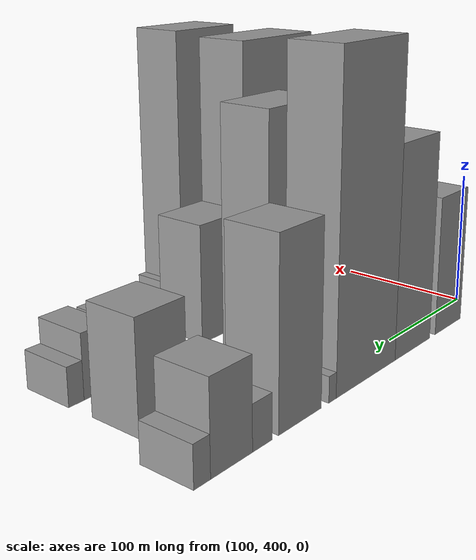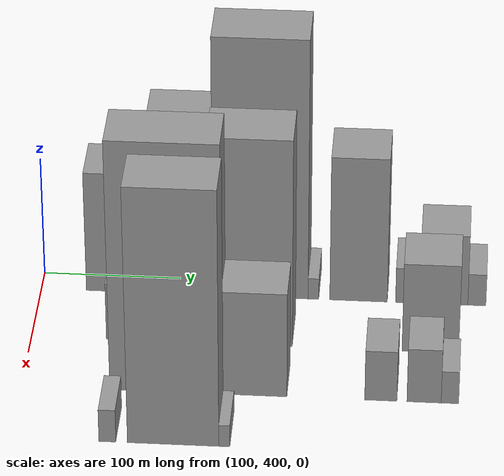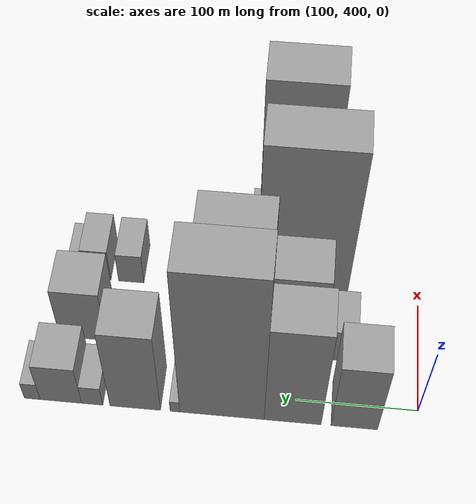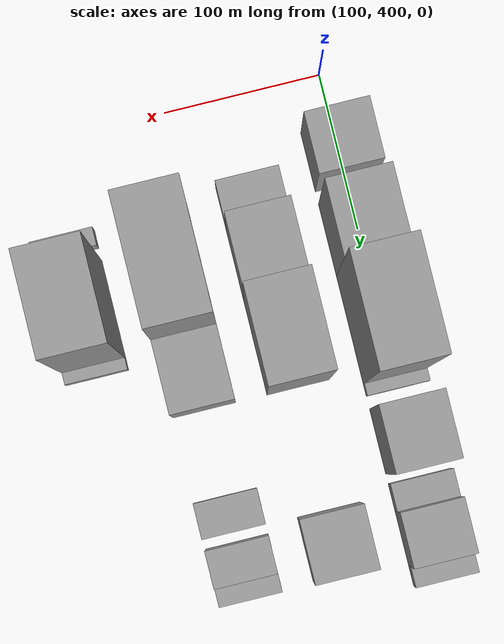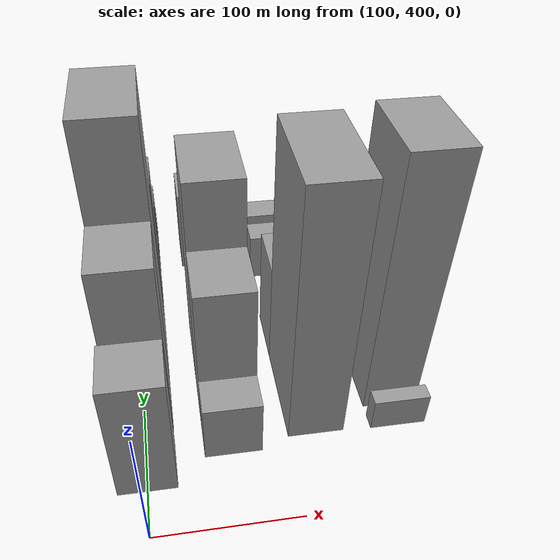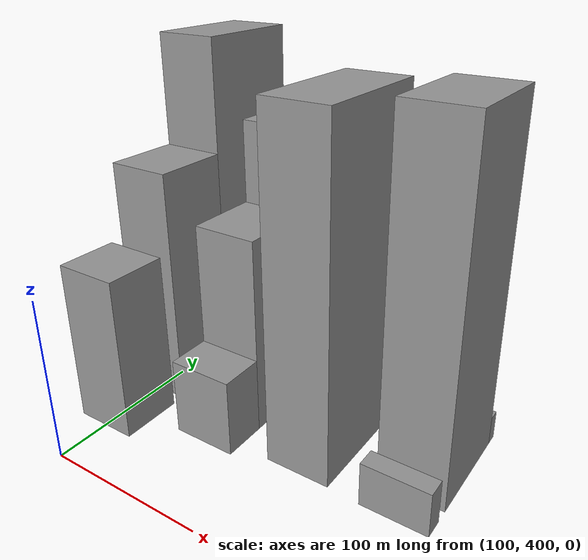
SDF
<sdf version="1.6">
 <world name="default">
  <model name="building_37">
   <static>1</static>
   <pose>100.0000 451.7910 0 0.000000 0.000000 0.000000</pose>
   <link name="link">
    <pose>0 0 51.00 0 0 0</pose>
    <collision name="collision"><geometry><box><size>40.0000 37.9322 102.0000</size></box></geometry></collision>
    <visual name="visual">
     <cast_shadows>0</cast_shadows>
     <geometry><box><size>40.0000 37.9322 102.0000</size></box></geometry>
     <material>
      <script>
       <uri>model://grey_wall/materials/scripts</uri>
       <uri>model://grey_wall/materials/textures</uri>
       <name>vrc/grey_wall</name>
      </script>
     </material>
    </visual>
   </link>
  </model>
  <model name="building_38">
   <static>1</static>
   <pose>100.0000 502.1103 0 0.000000 0.000000 0.000000</pose>
   <link name="link">
    <pose>0 0 75.00 0 0 0</pose>
    <collision name="collision"><geometry><box><size>40.0000 46.7064 150.0000</size></box></geometry></collision>
    <visual name="visual">
     <cast_shadows>0</cast_shadows>
     <geometry><box><size>40.0000 46.7064 150.0000</size></box></geometry>
     <material>
      <script>
       <uri>model://grey_wall/materials/scripts</uri>
       <uri>model://grey_wall/materials/textures</uri>
       <name>vrc/grey_wall</name>
      </script>
     </material>
    </visual>
   </link>
  </model>
  <model name="building_39">
   <static>1</static>
   <pose>100.0000 560.2259 0 0.000000 0.000000 0.000000</pose>
   <link name="link">
    <pose>0 0 109.50 0 0 0</pose>
    <collision name="collision"><geometry><box><size>40.0000 69.5249 219.0000</size></box></geometry></collision>
    <visual name="visual">
     <cast_shadows>0</cast_shadows>
     <geometry><box><size>40.0000 69.5249 219.0000</size></box></geometry>
     <material>
      <script>
       <uri>model://grey_wall/materials/scripts</uri>
       <uri>model://grey_wall/materials/textures</uri>
       <name>vrc/grey_wall</name>
      </script>
     </material>
    </visual>
   </link>
  </model>
  <model name="building_40">
   <static>1</static>
   <pose>100.0000 598.9183 0 0.000000 0.000000 0.000000</pose>
   <link name="link">
    <pose>0 0 9.00 0 0 0</pose>
    <collision name="collision"><geometry><box><size>40.0000 7.8598 18.0000</size></box></geometry></collision>
    <visual name="visual">
     <cast_shadows>0</cast_shadows>
     <geometry><box><size>40.0000 7.8598 18.0000</size></box></geometry>
     <material>
      <script>
       <uri>model://grey_wall/materials/scripts</uri>
       <uri>model://grey_wall/materials/textures</uri>
       <name>vrc/grey_wall</name>
      </script>
     </material>
    </visual>
   </link>
  </model>
  <model name="building_41">
   <static>1</static>
   <pose>100.0000 631.7948 0 0.000000 0.000000 0.000000</pose>
   <link name="link">
    <pose>0 0 61.50 0 0 0</pose>
    <collision name="collision"><geometry><box><size>40.0000 41.8931 123.0000</size></box></geometry></collision>
    <visual name="visual">
     <cast_shadows>0</cast_shadows>
     <geometry><box><size>40.0000 41.8931 123.0000</size></box></geometry>
     <material>
      <script>
       <uri>model://grey_wall/materials/scripts</uri>
       <uri>model://grey_wall/materials/textures</uri>
       <name>vrc/grey_wall</name>
      </script>
     </material>
    </visual>
   </link>
  </model>
  <model name="building_42">
   <static>1</static>
   <pose>100.0000 667.5540 0 0.000000 0.000000 0.000000</pose>
   <link name="link">
    <pose>0 0 15.00 0 0 0</pose>
    <collision name="collision"><geometry><box><size>40.0000 17.6254 30.0000</size></box></geometry></collision>
    <visual name="visual">
     <cast_shadows>0</cast_shadows>
     <geometry><box><size>40.0000 17.6254 30.0000</size></box></geometry>
     <material>
      <script>
       <uri>model://grey_wall/materials/scripts</uri>
       <uri>model://grey_wall/materials/textures</uri>
       <name>vrc/grey_wall</name>
      </script>
     </material>
    </visual>
   </link>
  </model>
  <model name="building_43">
   <static>1</static>
   <pose>100.0000 693.7831 0 0.000000 0.000000 0.000000</pose>
   <link name="link">
    <pose>0 0 30.00 0 0 0</pose>
    <collision name="collision"><geometry><box><size>40.0000 34.8327 60.0000</size></box></geometry></collision>
    <visual name="visual">
     <cast_shadows>0</cast_shadows>
     <geometry><box><size>40.0000 34.8327 60.0000</size></box></geometry>
     <material>
      <script>
       <uri>model://grey_wall/materials/scripts</uri>
       <uri>model://grey_wall/materials/textures</uri>
       <name>vrc/grey_wall</name>
      </script>
     </material>
    </visual>
   </link>
  </model>
  <model name="building_44">
   <static>1</static>
   <pose>100.0000 717.7526 0 0.000000 0.000000 0.000000</pose>
   <link name="link">
    <pose>0 0 13.50 0 0 0</pose>
    <collision name="collision"><geometry><box><size>40.0000 13.1063 27.0000</size></box></geometry></collision>
    <visual name="visual">
     <cast_shadows>0</cast_shadows>
     <geometry><box><size>40.0000 13.1063 27.0000</size></box></geometry>
     <material>
      <script>
       <uri>model://grey_wall/materials/scripts</uri>
       <uri>model://grey_wall/materials/textures</uri>
       <name>vrc/grey_wall</name>
      </script>
     </material>
    </visual>
   </link>
  </model>
  <model name="building_88">
   <static>1</static>
   <pose>160.0000 467.3192 0 0.000000 0.000000 0.000000</pose>
   <link name="link">
    <pose>0 0 24.00 0 0 0</pose>
    <collision name="collision"><geometry><box><size>40.0000 26.9755 48.0000</size></box></geometry></collision>
    <visual name="visual">
     <cast_shadows>0</cast_shadows>
     <geometry><box><size>40.0000 26.9755 48.0000</size></box></geometry>
     <material>
      <script>
       <uri>model://grey_wall/materials/scripts</uri>
       <uri>model://grey_wall/materials/textures</uri>
       <name>vrc/grey_wall</name>
      </script>
     </material>
    </visual>
   </link>
  </model>
  <model name="building_89">
   <static>1</static>
   <pose>160.0000 503.6208 0 0.000000 0.000000 0.000000</pose>
   <link name="link">
    <pose>0 0 61.50 0 0 0</pose>
    <collision name="collision"><geometry><box><size>40.0000 45.6277 123.0000</size></box></geometry></collision>
    <visual name="visual">
     <cast_shadows>0</cast_shadows>
     <geometry><box><size>40.0000 45.6277 123.0000</size></box></geometry>
     <material>
      <script>
       <uri>model://grey_wall/materials/scripts</uri>
       <uri>model://grey_wall/materials/textures</uri>
       <name>vrc/grey_wall</name>
      </script>
     </material>
    </visual>
   </link>
  </model>
  <model name="building_90">
   <static>1</static>
   <pose>160.0000 556.7810 0 0.000000 0.000000 0.000000</pose>
   <link name="link">
    <pose>0 0 87.00 0 0 0</pose>
    <collision name="collision"><geometry><box><size>40.0000 60.6925 174.0000</size></box></geometry></collision>
    <visual name="visual">
     <cast_shadows>0</cast_shadows>
     <geometry><box><size>40.0000 60.6925 174.0000</size></box></geometry>
     <material>
      <script>
       <uri>model://grey_wall/materials/scripts</uri>
       <uri>model://grey_wall/materials/textures</uri>
       <name>vrc/grey_wall</name>
      </script>
     </material>
    </visual>
   </link>
  </model>
  <model name="building_91">
   <static>1</static>
   <pose>160.0000 685.6593 0 0.000000 0.000000 0.000000</pose>
   <link name="link">
    <pose>0 0 37.50 0 0 0</pose>
    <collision name="collision"><geometry><box><size>40.0000 40.3547 75.0000</size></box></geometry></collision>
    <visual name="visual">
     <cast_shadows>0</cast_shadows>
     <geometry><box><size>40.0000 40.3547 75.0000</size></box></geometry>
     <material>
      <script>
       <uri>model://grey_wall/materials/scripts</uri>
       <uri>model://grey_wall/materials/textures</uri>
       <name>vrc/grey_wall</name>
      </script>
     </material>
    </visual>
   </link>
  </model>
  <model name="building_147">
   <static>1</static>
   <pose>220.0000 501.7446 0 0.000000 0.000000 0.000000</pose>
   <link name="link">
    <pose>0 0 103.50 0 0 0</pose>
    <collision name="collision"><geometry><box><size>40.0000 78.6054 207.0000</size></box></geometry></collision>
    <visual name="visual">
     <cast_shadows>0</cast_shadows>
     <geometry><box><size>40.0000 78.6054 207.0000</size></box></geometry>
     <material>
      <script>
       <uri>model://grey_wall/materials/scripts</uri>
       <uri>model://grey_wall/materials/textures</uri>
       <name>vrc/grey_wall</name>
      </script>
     </material>
    </visual>
   </link>
  </model>
  <model name="building_148">
   <static>1</static>
   <pose>220.0000 564.0051 0 0.000000 0.000000 0.000000</pose>
   <link name="link">
    <pose>0 0 43.50 0 0 0</pose>
    <collision name="collision"><geometry><box><size>40.0000 45.9154 87.0000</size></box></geometry></collision>
    <visual name="visual">
     <cast_shadows>0</cast_shadows>
     <geometry><box><size>40.0000 45.9154 87.0000</size></box></geometry>
     <material>
      <script>
       <uri>model://grey_wall/materials/scripts</uri>
       <uri>model://grey_wall/materials/textures</uri>
       <name>vrc/grey_wall</name>
      </script>
     </material>
    </visual>
   </link>
  </model>
  <model name="building_149">
   <static>1</static>
   <pose>220.0000 652.7260 0 0.000000 0.000000 0.000000</pose>
   <link name="link">
    <pose>0 0 21.00 0 0 0</pose>
    <collision name="collision"><geometry><box><size>40.0000 22.5088 42.0000</size></box></geometry></collision>
    <visual name="visual">
     <cast_shadows>0</cast_shadows>
     <geometry><box><size>40.0000 22.5088 42.0000</size></box></geometry>
     <material>
      <script>
       <uri>model://grey_wall/materials/scripts</uri>
       <uri>model://grey_wall/materials/textures</uri>
       <name>vrc/grey_wall</name>
      </script>
     </material>
    </visual>
   </link>
  </model>
  <model name="building_150">
   <static>1</static>
   <pose>220.0000 682.9258 0 0.000000 0.000000 0.000000</pose>
   <link name="link">
    <pose>0 0 22.50 0 0 0</pose>
    <collision name="collision"><geometry><box><size>40.0000 23.8910 45.0000</size></box></geometry></collision>
    <visual name="visual">
     <cast_shadows>0</cast_shadows>
     <geometry><box><size>40.0000 23.8910 45.0000</size></box></geometry>
     <material>
      <script>
       <uri>model://grey_wall/materials/scripts</uri>
       <uri>model://grey_wall/materials/textures</uri>
       <name>vrc/grey_wall</name>
      </script>
     </material>
    </visual>
   </link>
  </model>
  <model name="building_151">
   <static>1</static>
   <pose>220.0000 700.9793 0 0.000000 0.000000 0.000000</pose>
   <link name="link">
    <pose>0 0 13.50 0 0 0</pose>
    <collision name="collision"><geometry><box><size>40.0000 12.2160 27.0000</size></box></geometry></collision>
    <visual name="visual">
     <cast_shadows>0</cast_shadows>
     <geometry><box><size>40.0000 12.2160 27.0000</size></box></geometry>
     <material>
      <script>
       <uri>model://grey_wall/materials/scripts</uri>
       <uri>model://grey_wall/materials/textures</uri>
       <name>vrc/grey_wall</name>
      </script>
     </material>
    </visual>
   </link>
  </model>
  <model name="building_205">
   <static>1</static>
   <pose>280.0000 467.0010 0 0.000000 0.000000 0.000000</pose>
   <link name="link">
    <pose>0 0 13.50 0 0 0</pose>
    <collision name="collision"><geometry><box><size>40.0000 11.6847 27.0000</size></box></geometry></collision>
    <visual name="visual">
     <cast_shadows>0</cast_shadows>
     <geometry><box><size>40.0000 11.6847 27.0000</size></box></geometry>
     <material>
      <script>
       <uri>model://grey_wall/materials/scripts</uri>
       <uri>model://grey_wall/materials/textures</uri>
       <name>vrc/grey_wall</name>
      </script>
     </material>
    </visual>
   </link>
  </model>
  <model name="building_206">
   <static>1</static>
   <pose>280.0000 512.3466 0 0.000000 0.000000 0.000000</pose>
   <link name="link">
    <pose>0 0 105.00 0 0 0</pose>
    <collision name="collision"><geometry><box><size>40.0000 63.0065 210.0000</size></box></geometry></collision>
    <visual name="visual">
     <cast_shadows>0</cast_shadows>
     <geometry><box><size>40.0000 63.0065 210.0000</size></box></geometry>
     <material>
      <script>
       <uri>model://grey_wall/materials/scripts</uri>
       <uri>model://grey_wall/materials/textures</uri>
       <name>vrc/grey_wall</name>
      </script>
     </material>
    </visual>
   </link>
  </model>
  <model name="building_207">
   <static>1</static>
   <pose>280.0000 547.6409 0 0.000000 0.000000 0.000000</pose>
   <link name="link">
    <pose>0 0 9.00 0 0 0</pose>
    <collision name="collision"><geometry><box><size>40.0000 7.5820 18.0000</size></box></geometry></collision>
    <visual name="visual">
     <cast_shadows>0</cast_shadows>
     <geometry><box><size>40.0000 7.5820 18.0000</size></box></geometry>
     <material>
      <script>
       <uri>model://grey_wall/materials/scripts</uri>
       <uri>model://grey_wall/materials/textures</uri>
       <name>vrc/grey_wall</name>
      </script>
     </material>
    </visual>
   </link>
  </model>
 </world>
</sdf>
